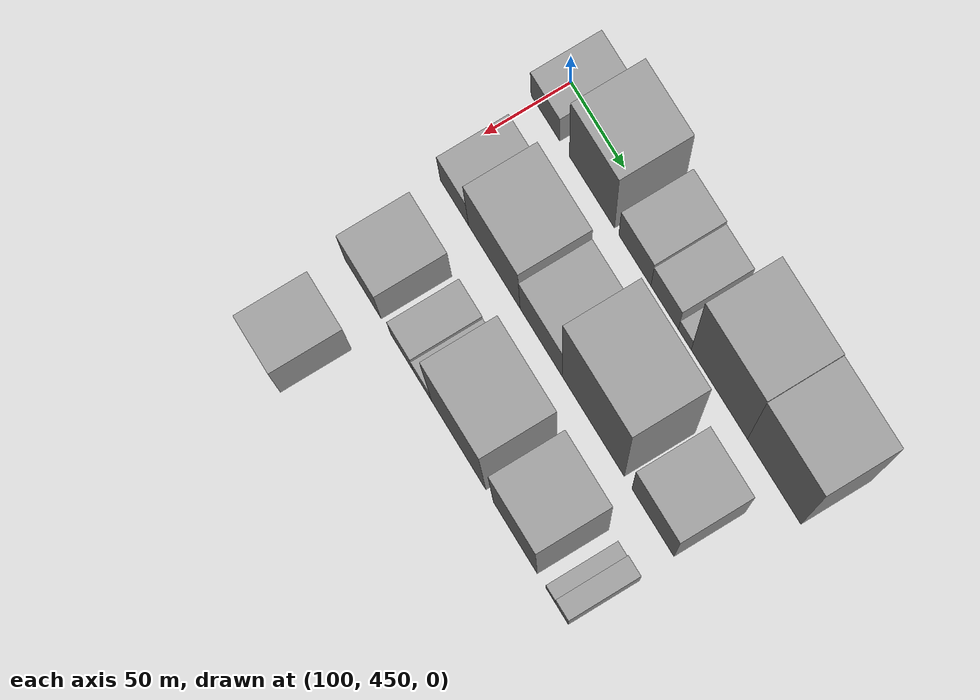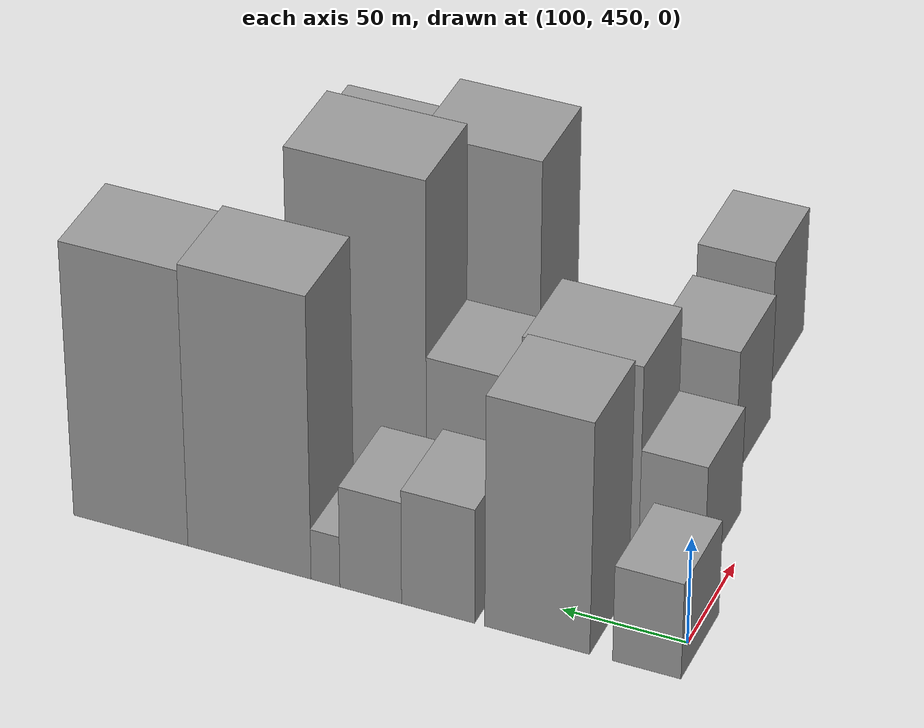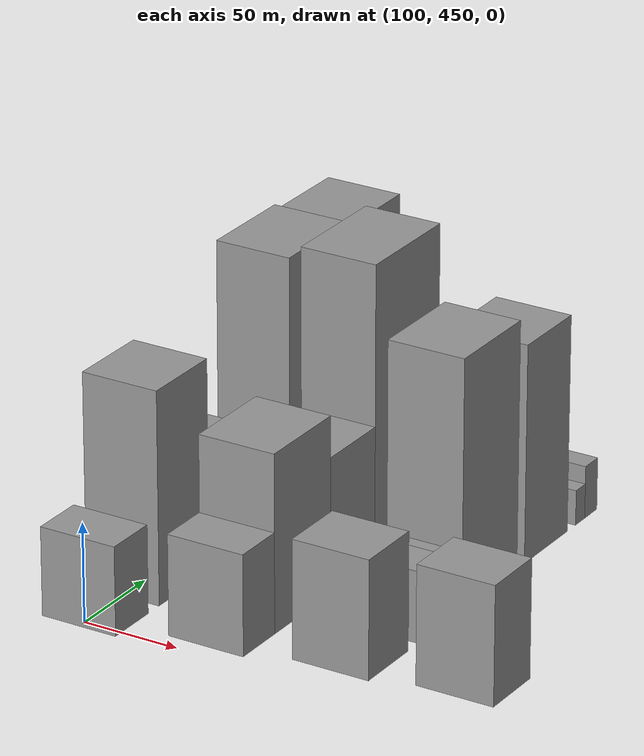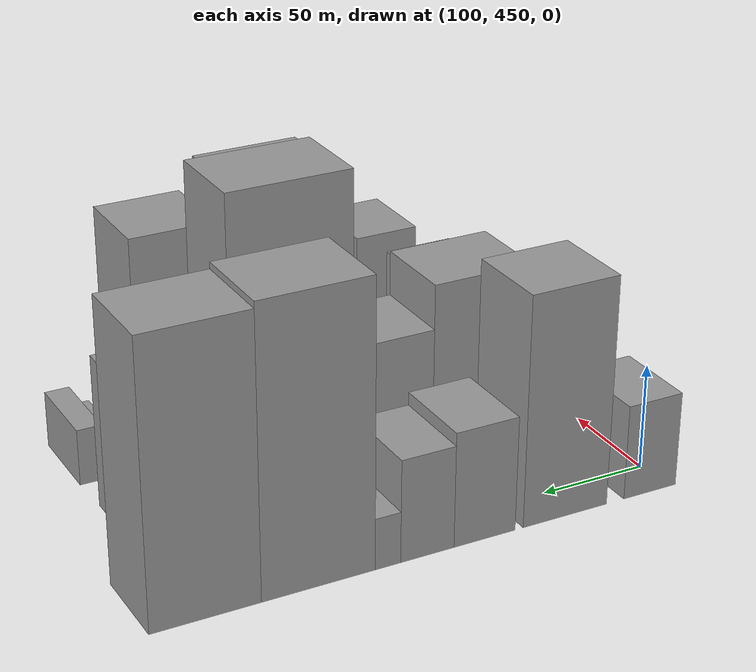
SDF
<sdf version="1.6">
 <world name="default">
  <model name="building_47">
   <static>1</static>
   <pose>100.0000 458.7642 0 0.000000 0.000000 0.000000</pose>
   <link name="link">
    <pose>0 0 22.50 0 0 0</pose>
    <collision name="collision"><geometry><box><size>40.0000 26.9426 45.0000</size></box></geometry></collision>
    <visual name="visual">
     <cast_shadows>0</cast_shadows>
     <geometry><box><size>40.0000 26.9426 45.0000</size></box></geometry>
     <material>
      <script>
       <uri>model://grey_wall/materials/scripts</uri>
       <uri>model://grey_wall/materials/textures</uri>
       <name>vrc/grey_wall</name>
      </script>
     </material>
    </visual>
   </link>
  </model>
  <model name="building_48">
   <static>1</static>
   <pose>100.0000 502.2088 0 0.000000 0.000000 0.000000</pose>
   <link name="link">
    <pose>0 0 54.00 0 0 0</pose>
    <collision name="collision"><geometry><box><size>40.0000 41.9466 108.0000</size></box></geometry></collision>
    <visual name="visual">
     <cast_shadows>0</cast_shadows>
     <geometry><box><size>40.0000 41.9466 108.0000</size></box></geometry>
     <material>
      <script>
       <uri>model://grey_wall/materials/scripts</uri>
       <uri>model://grey_wall/materials/textures</uri>
       <name>vrc/grey_wall</name>
      </script>
     </material>
    </visual>
   </link>
  </model>
  <model name="building_49">
   <static>1</static>
   <pose>100.0000 541.9943 0 0.000000 0.000000 0.000000</pose>
   <link name="link">
    <pose>0 0 27.00 0 0 0</pose>
    <collision name="collision"><geometry><box><size>40.0000 29.6243 54.0000</size></box></geometry></collision>
    <visual name="visual">
     <cast_shadows>0</cast_shadows>
     <geometry><box><size>40.0000 29.6243 54.0000</size></box></geometry>
     <material>
      <script>
       <uri>model://grey_wall/materials/scripts</uri>
       <uri>model://grey_wall/materials/textures</uri>
       <name>vrc/grey_wall</name>
      </script>
     </material>
    </visual>
   </link>
  </model>
  <model name="building_50">
   <static>1</static>
   <pose>100.0000 569.3878 0 0.000000 0.000000 0.000000</pose>
   <link name="link">
    <pose>0 0 24.00 0 0 0</pose>
    <collision name="collision"><geometry><box><size>40.0000 25.1628 48.0000</size></box></geometry></collision>
    <visual name="visual">
     <cast_shadows>0</cast_shadows>
     <geometry><box><size>40.0000 25.1628 48.0000</size></box></geometry>
     <material>
      <script>
       <uri>model://grey_wall/materials/scripts</uri>
       <uri>model://grey_wall/materials/textures</uri>
       <name>vrc/grey_wall</name>
      </script>
     </material>
    </visual>
   </link>
  </model>
  <model name="building_51">
   <static>1</static>
   <pose>100.0000 587.8766 0 0.000000 0.000000 0.000000</pose>
   <link name="link">
    <pose>0 0 12.00 0 0 0</pose>
    <collision name="collision"><geometry><box><size>40.0000 11.8147 24.0000</size></box></geometry></collision>
    <visual name="visual">
     <cast_shadows>0</cast_shadows>
     <geometry><box><size>40.0000 11.8147 24.0000</size></box></geometry>
     <material>
      <script>
       <uri>model://grey_wall/materials/scripts</uri>
       <uri>model://grey_wall/materials/textures</uri>
       <name>vrc/grey_wall</name>
      </script>
     </material>
    </visual>
   </link>
  </model>
  <model name="building_52">
   <static>1</static>
   <pose>100.0000 619.3461 0 0.000000 0.000000 0.000000</pose>
   <link name="link">
    <pose>0 0 66.00 0 0 0</pose>
    <collision name="collision"><geometry><box><size>40.0000 51.1244 132.0000</size></box></geometry></collision>
    <visual name="visual">
     <cast_shadows>0</cast_shadows>
     <geometry><box><size>40.0000 51.1244 132.0000</size></box></geometry>
     <material>
      <script>
       <uri>model://grey_wall/materials/scripts</uri>
       <uri>model://grey_wall/materials/textures</uri>
       <name>vrc/grey_wall</name>
      </script>
     </material>
    </visual>
   </link>
  </model>
  <model name="building_53">
   <static>1</static>
   <pose>100.0000 669.0104 0 0.000000 0.000000 0.000000</pose>
   <link name="link">
    <pose>0 0 64.50 0 0 0</pose>
    <collision name="collision"><geometry><box><size>40.0000 48.2042 129.0000</size></box></geometry></collision>
    <visual name="visual">
     <cast_shadows>0</cast_shadows>
     <geometry><box><size>40.0000 48.2042 129.0000</size></box></geometry>
     <material>
      <script>
       <uri>model://grey_wall/materials/scripts</uri>
       <uri>model://grey_wall/materials/textures</uri>
       <name>vrc/grey_wall</name>
      </script>
     </material>
    </visual>
   </link>
  </model>
  <model name="building_103">
   <static>1</static>
   <pose>160.0000 471.7679 0 0.000000 0.000000 0.000000</pose>
   <link name="link">
    <pose>0 0 25.50 0 0 0</pose>
    <collision name="collision"><geometry><box><size>40.0000 26.4926 51.0000</size></box></geometry></collision>
    <visual name="visual">
     <cast_shadows>0</cast_shadows>
     <geometry><box><size>40.0000 26.4926 51.0000</size></box></geometry>
     <material>
      <script>
       <uri>model://grey_wall/materials/scripts</uri>
       <uri>model://grey_wall/materials/textures</uri>
       <name>vrc/grey_wall</name>
      </script>
     </material>
    </visual>
   </link>
  </model>
  <model name="building_104">
   <static>1</static>
   <pose>160.0000 509.1360 0 0.000000 0.000000 0.000000</pose>
   <link name="link">
    <pose>0 0 45.00 0 0 0</pose>
    <collision name="collision"><geometry><box><size>40.0000 48.2435 90.0000</size></box></geometry></collision>
    <visual name="visual">
     <cast_shadows>0</cast_shadows>
     <geometry><box><size>40.0000 48.2435 90.0000</size></box></geometry>
     <material>
      <script>
       <uri>model://grey_wall/materials/scripts</uri>
       <uri>model://grey_wall/materials/textures</uri>
       <name>vrc/grey_wall</name>
      </script>
     </material>
    </visual>
   </link>
  </model>
  <model name="building_105">
   <static>1</static>
   <pose>160.0000 552.6745 0 0.000000 0.000000 0.000000</pose>
   <link name="link">
    <pose>0 0 34.50 0 0 0</pose>
    <collision name="collision"><geometry><box><size>40.0000 38.8337 69.0000</size></box></geometry></collision>
    <visual name="visual">
     <cast_shadows>0</cast_shadows>
     <geometry><box><size>40.0000 38.8337 69.0000</size></box></geometry>
     <material>
      <script>
       <uri>model://grey_wall/materials/scripts</uri>
       <uri>model://grey_wall/materials/textures</uri>
       <name>vrc/grey_wall</name>
      </script>
     </material>
    </visual>
   </link>
  </model>
  <model name="building_106">
   <static>1</static>
   <pose>160.0000 600.6269 0 0.000000 0.000000 0.000000</pose>
   <link name="link">
    <pose>0 0 75.00 0 0 0</pose>
    <collision name="collision"><geometry><box><size>40.0000 57.0711 150.0000</size></box></geometry></collision>
    <visual name="visual">
     <cast_shadows>0</cast_shadows>
     <geometry><box><size>40.0000 57.0711 150.0000</size></box></geometry>
     <material>
      <script>
       <uri>model://grey_wall/materials/scripts</uri>
       <uri>model://grey_wall/materials/textures</uri>
       <name>vrc/grey_wall</name>
      </script>
     </material>
    </visual>
   </link>
  </model>
  <model name="building_107">
   <static>1</static>
   <pose>160.0000 655.2852 0 0.000000 0.000000 0.000000</pose>
   <link name="link">
    <pose>0 0 36.00 0 0 0</pose>
    <collision name="collision"><geometry><box><size>40.0000 38.2454 72.0000</size></box></geometry></collision>
    <visual name="visual">
     <cast_shadows>0</cast_shadows>
     <geometry><box><size>40.0000 38.2454 72.0000</size></box></geometry>
     <material>
      <script>
       <uri>model://grey_wall/materials/scripts</uri>
       <uri>model://grey_wall/materials/textures</uri>
       <name>vrc/grey_wall</name>
      </script>
     </material>
    </visual>
   </link>
  </model>
  <model name="building_157">
   <static>1</static>
   <pose>220.0000 485.1778 0 0.000000 0.000000 0.000000</pose>
   <link name="link">
    <pose>0 0 30.00 0 0 0</pose>
    <collision name="collision"><geometry><box><size>40.0000 34.2228 60.0000</size></box></geometry></collision>
    <visual name="visual">
     <cast_shadows>0</cast_shadows>
     <geometry><box><size>40.0000 34.2228 60.0000</size></box></geometry>
     <material>
      <script>
       <uri>model://grey_wall/materials/scripts</uri>
       <uri>model://grey_wall/materials/textures</uri>
       <name>vrc/grey_wall</name>
      </script>
     </material>
    </visual>
   </link>
  </model>
  <model name="building_158">
   <static>1</static>
   <pose>220.0000 521.9402 0 0.000000 0.000000 0.000000</pose>
   <link name="link">
    <pose>0 0 18.00 0 0 0</pose>
    <collision name="collision"><geometry><box><size>40.0000 21.3019 36.0000</size></box></geometry></collision>
    <visual name="visual">
     <cast_shadows>0</cast_shadows>
     <geometry><box><size>40.0000 21.3019 36.0000</size></box></geometry>
     <material>
      <script>
       <uri>model://grey_wall/materials/scripts</uri>
       <uri>model://grey_wall/materials/textures</uri>
       <name>vrc/grey_wall</name>
      </script>
     </material>
    </visual>
   </link>
  </model>
  <model name="building_159">
   <static>1</static>
   <pose>220.0000 541.1956 0 0.000000 0.000000 0.000000</pose>
   <link name="link">
    <pose>0 0 15.00 0 0 0</pose>
    <collision name="collision"><geometry><box><size>40.0000 17.2089 30.0000</size></box></geometry></collision>
    <visual name="visual">
     <cast_shadows>0</cast_shadows>
     <geometry><box><size>40.0000 17.2089 30.0000</size></box></geometry>
     <material>
      <script>
       <uri>model://grey_wall/materials/scripts</uri>
       <uri>model://grey_wall/materials/textures</uri>
       <name>vrc/grey_wall</name>
      </script>
     </material>
    </visual>
   </link>
  </model>
  <model name="building_160">
   <static>1</static>
   <pose>220.0000 574.8858 0 0.000000 0.000000 0.000000</pose>
   <link name="link">
    <pose>0 0 63.00 0 0 0</pose>
    <collision name="collision"><geometry><box><size>40.0000 50.1714 126.0000</size></box></geometry></collision>
    <visual name="visual">
     <cast_shadows>0</cast_shadows>
     <geometry><box><size>40.0000 50.1714 126.0000</size></box></geometry>
     <material>
      <script>
       <uri>model://grey_wall/materials/scripts</uri>
       <uri>model://grey_wall/materials/textures</uri>
       <name>vrc/grey_wall</name>
      </script>
     </material>
    </visual>
   </link>
  </model>
  <model name="building_161">
   <static>1</static>
   <pose>220.0000 627.0878 0 0.000000 0.000000 0.000000</pose>
   <link name="link">
    <pose>0 0 55.50 0 0 0</pose>
    <collision name="collision"><geometry><box><size>40.0000 40.2326 111.0000</size></box></geometry></collision>
    <visual name="visual">
     <cast_shadows>0</cast_shadows>
     <geometry><box><size>40.0000 40.2326 111.0000</size></box></geometry>
     <material>
      <script>
       <uri>model://grey_wall/materials/scripts</uri>
       <uri>model://grey_wall/materials/textures</uri>
       <name>vrc/grey_wall</name>
      </script>
     </material>
    </visual>
   </link>
  </model>
  <model name="building_162">
   <static>1</static>
   <pose>220.0000 659.6000 0 0.000000 0.000000 0.000000</pose>
   <link name="link">
    <pose>0 0 9.00 0 0 0</pose>
    <collision name="collision"><geometry><box><size>40.0000 8.7918 18.0000</size></box></geometry></collision>
    <visual name="visual">
     <cast_shadows>0</cast_shadows>
     <geometry><box><size>40.0000 8.7918 18.0000</size></box></geometry>
     <material>
      <script>
       <uri>model://grey_wall/materials/scripts</uri>
       <uri>model://grey_wall/materials/textures</uri>
       <name>vrc/grey_wall</name>
      </script>
     </material>
    </visual>
   </link>
  </model>
  <model name="building_163">
   <static>1</static>
   <pose>220.0000 669.7903 0 0.000000 0.000000 0.000000</pose>
   <link name="link">
    <pose>0 0 13.50 0 0 0</pose>
    <collision name="collision"><geometry><box><size>40.0000 11.5890 27.0000</size></box></geometry></collision>
    <visual name="visual">
     <cast_shadows>0</cast_shadows>
     <geometry><box><size>40.0000 11.5890 27.0000</size></box></geometry>
     <material>
      <script>
       <uri>model://grey_wall/materials/scripts</uri>
       <uri>model://grey_wall/materials/textures</uri>
       <name>vrc/grey_wall</name>
      </script>
     </material>
    </visual>
   </link>
  </model>
  <model name="building_207">
   <static>1</static>
   <pose>280.0000 491.5989 0 0.000000 0.000000 0.000000</pose>
   <link name="link">
    <pose>0 0 30.00 0 0 0</pose>
    <collision name="collision"><geometry><box><size>40.0000 32.2023 60.0000</size></box></geometry></collision>
    <visual name="visual">
     <cast_shadows>0</cast_shadows>
     <geometry><box><size>40.0000 32.2023 60.0000</size></box></geometry>
     <material>
      <script>
       <uri>model://grey_wall/materials/scripts</uri>
       <uri>model://grey_wall/materials/textures</uri>
       <name>vrc/grey_wall</name>
      </script>
     </material>
    </visual>
   </link>
  </model>
 </world>
</sdf>
